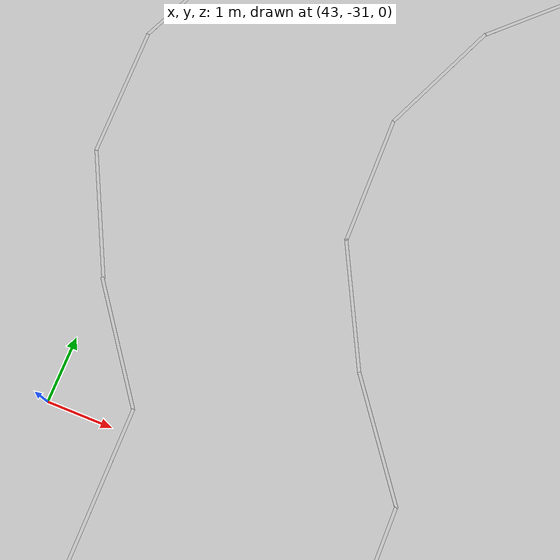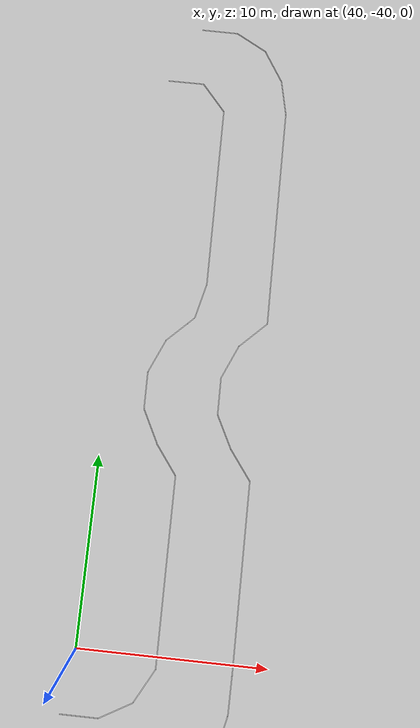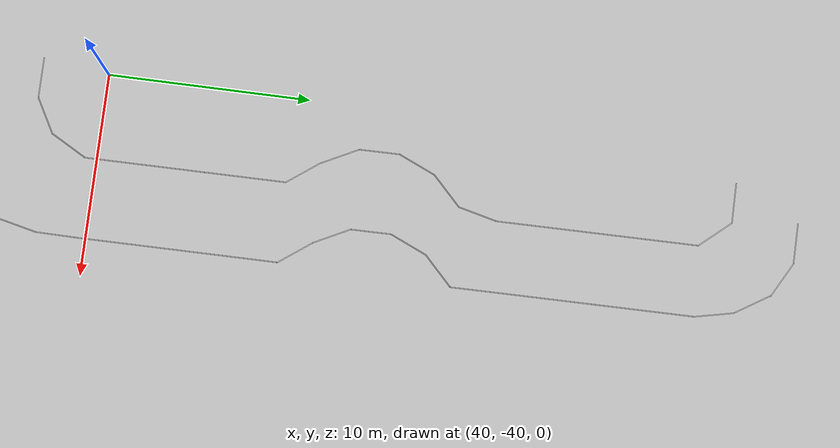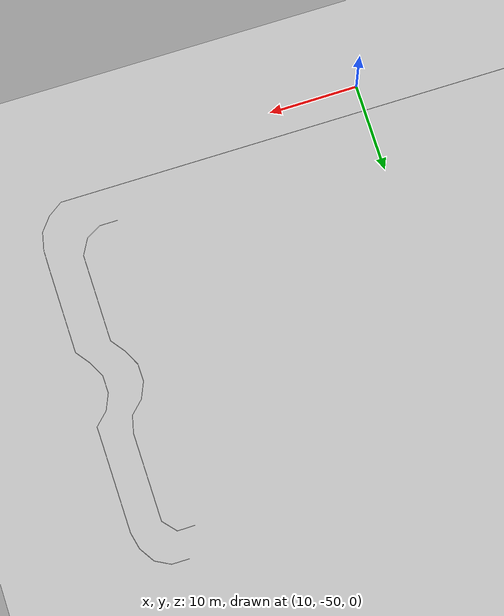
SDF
<sdf version="1.7">
 <world name="default">
  <light name="sun" type="directional">
   <pose>0 0 10 0 -0 0</pose>
   <diffuse>0.8 0.8 0.8 1</diffuse>
   <specular>0.2 0.2 0.2 1</specular>
   <attenuation>
    <range>1000</range>
    <constant>0.9</constant>
    <linear>0.01</linear>
    <quadratic>0.001</quadratic>
   </attenuation>
   <direction>-0.5 0.1 -0.9</direction>
   <spot><inner_angle>0</inner_angle><outer_angle>0</outer_angle><falloff>0</falloff></spot>
  </light>
  <model name="ground_plane">
   <static>1</static>
   <link name="link">
    <collision name="collision">
     <geometry><plane><normal>0 0 1</normal><size>100 100</size></plane></geometry>
     <surface>
      <contact><collide_bitmask>65535</collide_bitmask></contact>
      <friction><ode><mu>100</mu><mu2>50</mu2></ode></friction>
     </surface>
    </collision>
    <visual name="visual">
     <cast_shadows>0</cast_shadows>
     <geometry><plane><normal>0 0 1</normal><size>100 100</size></plane></geometry>
     <material>
      <script><uri>file://media/materials/scripts/gazebo.material</uri><name>Gazebo/Grey</name></script>
     </material>
    </visual>
   </link>
  </model>
  <gravity>0 0 -9.8</gravity>
  <magnetic_field>6e-06 2.3e-05 -4.2e-05</magnetic_field>
  <atmosphere type="adiabatic"/>
  <physics type="ode">
   <max_step_size>0.001</max_step_size>
   <real_time_factor>1</real_time_factor>
   <real_time_update_rate>1000</real_time_update_rate>
  </physics>
  <scene><ambient>0.4 0.4 0.4 1</ambient><background>0.7 0.7 0.7 1</background><shadows>1</shadows></scene>
  <spherical_coordinates>
   <surface_model>EARTH_WGS84</surface_model>
   <latitude_deg>0</latitude_deg>
   <longitude_deg>0</longitude_deg>
   <elevation>0</elevation>
   <heading_deg>0</heading_deg>
  </spherical_coordinates>
  <model name="140m Tape">
   <static>1</static>
   <link name="link">
    <inertial>
     <pose>0 0 0.0175 0 -0 0</pose>
     <mass>10</mass>
     <inertia><ixx>1</ixx><ixy>0</ixy><ixz>0</ixz><iyy>1</iyy><iyz>0</iyz><izz>1</izz></inertia>
    </inertial>
    <collision name="collision">
     <pose>0 0 0.0175 0 -0 0</pose>
     <geometry><mesh><uri>model://140mTape/140mTape.dae</uri></mesh></geometry>
    </collision>
    <visual name="visual"><geometry><mesh><uri>model://140mTape/140mTape.dae</uri></mesh></geometry></visual>
   </link>
   <pose>-21.1513 -47.1539 0 0 -0 0</pose>
  </model>
  <model name="2m Tape">
   <static>1</static>
   <link name="link">
    <inertial>
     <pose>0 0 0.0175 0 -0 0</pose>
     <mass>10</mass>
     <inertia><ixx>1</ixx><ixy>0</ixy><ixz>0</ixz><iyy>1</iyy><iyz>0</iyz><izz>1</izz></inertia>
    </inertial>
    <collision name="collision">
     <pose>0 0 0.0175 0 -0 0</pose>
     <geometry><mesh><uri>model://2mTape/2mTape.dae</uri></mesh></geometry>
    </collision>
    <visual name="visual"><geometry><mesh><uri>model://2mTape/2mTape.dae</uri></mesh></geometry></visual>
   </link>
   <pose>45.6804 -46.5754 0 0 -0 0.601741</pose>
  </model>
  <model name="2m Tape_0">
   <static>1</static>
   <link name="link">
    <inertial>
     <pose>0 0 0.0175 0 -0 0</pose>
     <mass>10</mass>
     <inertia><ixx>1</ixx><ixy>0</ixy><ixz>0</ixz><iyy>1</iyy><iyz>0</iyz><izz>1</izz></inertia>
    </inertial>
    <collision name="collision">
     <pose>0 0 0.0175 0 -0 0</pose>
     <geometry><mesh><uri>model://2mTape/2mTape.dae</uri></mesh></geometry>
    </collision>
    <visual name="visual"><geometry><mesh><uri>model://2mTape/2mTape.dae</uri></mesh></geometry></visual>
   </link>
   <pose>47.1125 -45.2484 0 0 -0 0.895158</pose>
  </model>
  <model name="2m Tape_1">
   <static>1</static>
   <link name="link">
    <inertial>
     <pose>0 0 0.0175 0 -0 0</pose>
     <mass>10</mass>
     <inertia><ixx>1</ixx><ixy>0</ixy><ixz>0</ixz><iyy>1</iyy><iyz>0</iyz><izz>1</izz></inertia>
    </inertial>
    <collision name="collision">
     <pose>0 0 0.0175 0 -0 0</pose>
     <geometry><mesh><uri>model://2mTape/2mTape.dae</uri></mesh></geometry>
    </collision>
    <visual name="visual"><geometry><mesh><uri>model://2mTape/2mTape.dae</uri></mesh></geometry></visual>
   </link>
   <pose>47.9608 -43.482 0 0 -0 1.34892</pose>
  </model>
  <model name="2m Tape_3">
   <static>1</static>
   <link name="link">
    <inertial>
     <pose>0 0 0.0175 0 -0 0</pose>
     <mass>10</mass>
     <inertia><ixx>1</ixx><ixy>0</ixy><ixz>0</ixz><iyy>1</iyy><iyz>0</iyz><izz>1</izz></inertia>
    </inertial>
    <collision name="collision">
     <pose>0 0 0.0175 0 -0 0</pose>
     <geometry><mesh><uri>model://2mTape/2mTape.dae</uri></mesh></geometry>
    </collision>
    <visual name="visual"><geometry><mesh><uri>model://2mTape/2mTape.dae</uri></mesh></geometry></visual>
   </link>
   <pose>48.1967 -41.5182 0 0 -0 1.56187</pose>
  </model>
  <model name="10m Tape_0">
   <static>1</static>
   <link name="link">
    <inertial>
     <pose>0 0 0.0175 0 -0 0</pose>
     <mass>10</mass>
     <inertia><ixx>1</ixx><ixy>0</ixy><ixz>0</ixz><iyy>1</iyy><iyz>0</iyz><izz>1</izz></inertia>
    </inertial>
    <collision name="collision">
     <pose>0 0 0.0175 0 -0 0</pose>
     <geometry><mesh><uri>model://10mTape/10mTape.dae</uri></mesh></geometry>
    </collision>
    <visual name="visual"><geometry><mesh><uri>model://10mTape/10mTape.dae</uri></mesh></geometry></visual>
   </link>
   <pose>48.1366 -35.5288 0 0 0 -1.56635</pose>
  </model>
  <model name="2m Tape_2">
   <static>1</static>
   <link name="link">
    <inertial>
     <pose>0 0 0.0175 0 -0 0</pose>
     <mass>10</mass>
     <inertia><ixx>1</ixx><ixy>0</ixy><ixz>0</ixz><iyy>1</iyy><iyz>0</iyz><izz>1</izz></inertia>
    </inertial>
    <collision name="collision">
     <pose>0 0 0.0175 0 -0 0</pose>
     <geometry><mesh><uri>model://2mTape/2mTape.dae</uri></mesh></geometry>
    </collision>
    <visual name="visual"><geometry><mesh><uri>model://2mTape/2mTape.dae</uri></mesh></geometry></visual>
   </link>
   <pose>47.5374 -29.7551 0 0 0 -0.932759</pose>
  </model>
  <model name="2m Tape_2_clone">
   <static>1</static>
   <link name="link">
    <inertial>
     <pose>0 0 0.0175 0 -0 0</pose>
     <mass>10</mass>
     <inertia><ixx>1</ixx><ixy>0</ixy><ixz>0</ixz><iyy>1</iyy><iyz>0</iyz><izz>1</izz></inertia>
    </inertial>
    <collision name="collision">
     <pose>0 0 0.0175 0 -0 0</pose>
     <geometry><mesh><uri>model://2mTape/2mTape.dae</uri></mesh></geometry>
    </collision>
    <visual name="visual"><geometry><mesh><uri>model://2mTape/2mTape.dae</uri></mesh></geometry></visual>
   </link>
   <pose>46.4948 -28.0704 0 0 0 -1.10193</pose>
  </model>
  <model name="2m Tape_4">
   <static>1</static>
   <link name="link">
    <inertial>
     <pose>0 0 0.0175 0 -0 0</pose>
     <mass>10</mass>
     <inertia><ixx>1</ixx><ixy>0</ixy><ixz>0</ixz><iyy>1</iyy><iyz>0</iyz><izz>1</izz></inertia>
    </inertial>
    <collision name="collision">
     <pose>0 0 0.0175 0 -0 0</pose>
     <geometry><mesh><uri>model://2mTape/2mTape.dae</uri></mesh></geometry>
    </collision>
    <visual name="visual"><geometry><mesh><uri>model://2mTape/2mTape.dae</uri></mesh></geometry></visual>
   </link>
   <pose>46.0419 -26.1884 0 0 0 -1.56173</pose>
  </model>
  <model name="2m Tape_5">
   <static>1</static>
   <link name="link">
    <inertial>
     <pose>0 0 0.0175 0 -0 0</pose>
     <mass>10</mass>
     <inertia><ixx>1</ixx><ixy>0</ixy><ixz>0</ixz><iyy>1</iyy><iyz>0</iyz><izz>1</izz></inertia>
    </inertial>
    <collision name="collision">
     <pose>0 0 0.0175 0 -0 0</pose>
     <geometry><mesh><uri>model://2mTape/2mTape.dae</uri></mesh></geometry>
    </collision>
    <visual name="visual"><geometry><mesh><uri>model://2mTape/2mTape.dae</uri></mesh></geometry></visual>
   </link>
   <pose>46.4353 -24.2739 0 0 0 -1.98171</pose>
  </model>
  <model name="2m Tape_5_clone">
   <static>1</static>
   <link name="link">
    <inertial>
     <pose>0 0 0.0175 0 -0 0</pose>
     <mass>10</mass>
     <inertia><ixx>1</ixx><ixy>0</ixy><ixz>0</ixz><iyy>1</iyy><iyz>0</iyz><izz>1</izz></inertia>
    </inertial>
    <collision name="collision">
     <pose>0 0 0.0175 0 -0 0</pose>
     <geometry><mesh><uri>model://2mTape/2mTape.dae</uri></mesh></geometry>
    </collision>
    <visual name="visual"><geometry><mesh><uri>model://2mTape/2mTape.dae</uri></mesh></geometry></visual>
   </link>
   <pose>47.5583 -22.6619 0 0 0 -2.36892</pose>
  </model>
  <model name="2m Tape_4_clone">
   <static>1</static>
   <link name="link">
    <inertial>
     <pose>0 0 0.0175 0 -0 0</pose>
     <mass>10</mass>
     <inertia><ixx>1</ixx><ixy>0</ixy><ixz>0</ixz><iyy>1</iyy><iyz>0</iyz><izz>1</izz></inertia>
    </inertial>
    <collision name="collision">
     <pose>0 0 0.0175 0 -0 0</pose>
     <geometry><mesh><uri>model://2mTape/2mTape.dae</uri></mesh></geometry>
    </collision>
    <visual name="visual"><geometry><mesh><uri>model://2mTape/2mTape.dae</uri></mesh></geometry></visual>
   </link>
   <pose>48.2399 -21.016 0 0 0 -1.56173</pose>
  </model>
  <model name="10m Tape_1">
   <static>1</static>
   <link name="link">
    <inertial>
     <pose>0 0 0.0175 0 -0 0</pose>
     <mass>10</mass>
     <inertia><ixx>1</ixx><ixy>0</ixy><ixz>0</ixz><iyy>1</iyy><iyz>0</iyz><izz>1</izz></inertia>
    </inertial>
    <collision name="collision">
     <pose>0 0 0.0175 0 -0 0</pose>
     <geometry><mesh><uri>model://10mTape/10mTape.dae</uri></mesh></geometry>
    </collision>
    <visual name="visual"><geometry><mesh><uri>model://10mTape/10mTape.dae</uri></mesh></geometry></visual>
   </link>
   <pose>48.2475 -15.0212 0 0 -0 1.57732</pose>
  </model>
  <model name="2m Tape_6">
   <static>1</static>
   <link name="link">
    <inertial>
     <pose>0 0 0.0175 0 -0 0</pose>
     <mass>10</mass>
     <inertia><ixx>1</ixx><ixy>0</ixy><ixz>0</ixz><iyy>1</iyy><iyz>0</iyz><izz>1</izz></inertia>
    </inertial>
    <collision name="collision">
     <pose>0 0 0.0175 0 -0 0</pose>
     <geometry><mesh><uri>model://2mTape/2mTape.dae</uri></mesh></geometry>
    </collision>
    <visual name="visual"><geometry><mesh><uri>model://2mTape/2mTape.dae</uri></mesh></geometry></visual>
   </link>
   <pose>47.2585 -7.2523 0 0 -0 2.13636</pose>
  </model>
  <model name="2m Tape_7">
   <static>1</static>
   <link name="link">
    <inertial>
     <pose>0 0 0.0175 0 -0 0</pose>
     <mass>10</mass>
     <inertia><ixx>1</ixx><ixy>0</ixy><ixz>0</ixz><iyy>1</iyy><iyz>0</iyz><izz>1</izz></inertia>
    </inertial>
    <collision name="collision">
     <pose>0 0 0.0175 0 -0 0</pose>
     <geometry><mesh><uri>model://2mTape/2mTape.dae</uri></mesh></geometry>
    </collision>
    <visual name="visual"><geometry><mesh><uri>model://2mTape/2mTape.dae</uri></mesh></geometry></visual>
   </link>
   <pose>47.9583 -9.0731 0 0 0 -1.35367</pose>
  </model>
  <model name="2m Tape_8">
   <static>1</static>
   <link name="link">
    <inertial>
     <pose>0 0 0.0175 0 -0 0</pose>
     <mass>10</mass>
     <inertia><ixx>1</ixx><ixy>0</ixy><ixz>0</ixz><iyy>1</iyy><iyz>0</iyz><izz>1</izz></inertia>
    </inertial>
    <collision name="collision">
     <pose>0 0 0.0175 0 -0 0</pose>
     <geometry><mesh><uri>model://2mTape/2mTape.dae</uri></mesh></geometry>
    </collision>
    <visual name="visual"><geometry><mesh><uri>model://2mTape/2mTape.dae</uri></mesh></geometry></visual>
   </link>
   <pose>45.8449 -5.97097 0 0 0 -0.494974</pose>
  </model>
  <model name="2m Tape_9">
   <static>1</static>
   <link name="link">
    <inertial>
     <pose>0 0 0.0175 0 -0 0</pose>
     <mass>10</mass>
     <inertia><ixx>1</ixx><ixy>0</ixy><ixz>0</ixz><iyy>1</iyy><iyz>0</iyz><izz>1</izz></inertia>
    </inertial>
    <collision name="collision">
     <pose>0 0 0.0175 0 -0 0</pose>
     <geometry><mesh><uri>model://2mTape/2mTape.dae</uri></mesh></geometry>
    </collision>
    <visual name="visual"><geometry><mesh><uri>model://2mTape/2mTape.dae</uri></mesh></geometry></visual>
   </link>
   <pose>44.0094 -5.51704 0 0 -0 0</pose>
  </model>
  <model name="2m Tape_3_clone">
   <static>1</static>
   <link name="link">
    <inertial>
     <pose>0 0 0.0175 0 -0 0</pose>
     <mass>10</mass>
     <inertia><ixx>1</ixx><ixy>0</ixy><ixz>0</ixz><iyy>1</iyy><iyz>0</iyz><izz>1</izz></inertia>
    </inertial>
    <collision name="collision">
     <pose>0 0 0.0175 0 -0 0</pose>
     <geometry><mesh><uri>model://2mTape/2mTape.dae</uri></mesh></geometry>
    </collision>
    <visual name="visual"><geometry><mesh><uri>model://2mTape/2mTape.dae</uri></mesh></geometry></visual>
   </link>
   <pose>43.75 -41.4958 0 0 -0 1.06326</pose>
  </model>
  <model name="10m Tape_0_clone">
   <static>1</static>
   <link name="link">
    <inertial>
     <pose>0 0 0.0175 0 -0 0</pose>
     <mass>10</mass>
     <inertia><ixx>1</ixx><ixy>0</ixy><ixz>0</ixz><iyy>1</iyy><iyz>0</iyz><izz>1</izz></inertia>
    </inertial>
    <collision name="collision">
     <pose>0 0 0.0175 0 -0 0</pose>
     <geometry><mesh><uri>model://10mTape/10mTape.dae</uri></mesh></geometry>
    </collision>
    <visual name="visual"><geometry><mesh><uri>model://10mTape/10mTape.dae</uri></mesh></geometry></visual>
   </link>
   <pose>44.1682 -35.6366 0 0 0 -1.56635</pose>
  </model>
  <model name="2m Tape_2_clone_0">
   <static>1</static>
   <link name="link">
    <inertial>
     <pose>0 0 0.0175 0 -0 0</pose>
     <mass>10</mass>
     <inertia><ixx>1</ixx><ixy>0</ixy><ixz>0</ixz><iyy>1</iyy><iyz>0</iyz><izz>1</izz></inertia>
    </inertial>
    <collision name="collision">
     <pose>0 0 0.0175 0 -0 0</pose>
     <geometry><mesh><uri>model://2mTape/2mTape.dae</uri></mesh></geometry>
    </collision>
    <visual name="visual"><geometry><mesh><uri>model://2mTape/2mTape.dae</uri></mesh></geometry></visual>
   </link>
   <pose>43.5511 -29.853 0 0 0 -0.932759</pose>
  </model>
  <model name="2m Tape_2_clone_clone">
   <static>1</static>
   <link name="link">
    <inertial>
     <pose>0 0 0.0175 0 -0 0</pose>
     <mass>10</mass>
     <inertia><ixx>1</ixx><ixy>0</ixy><ixz>0</ixz><iyy>1</iyy><iyz>0</iyz><izz>1</izz></inertia>
    </inertial>
    <collision name="collision">
     <pose>0 0 0.0175 0 -0 0</pose>
     <geometry><mesh><uri>model://2mTape/2mTape.dae</uri></mesh></geometry>
    </collision>
    <visual name="visual"><geometry><mesh><uri>model://2mTape/2mTape.dae</uri></mesh></geometry></visual>
   </link>
   <pose>42.5314 -28.1777 0 0 0 -1.10193</pose>
  </model>
  <model name="2m Tape_4_clone_0">
   <static>1</static>
   <link name="link">
    <inertial>
     <pose>0 0 0.0175 0 -0 0</pose>
     <mass>10</mass>
     <inertia><ixx>1</ixx><ixy>0</ixy><ixz>0</ixz><iyy>1</iyy><iyz>0</iyz><izz>1</izz></inertia>
    </inertial>
    <collision name="collision">
     <pose>0 0 0.0175 0 -0 0</pose>
     <geometry><mesh><uri>model://2mTape/2mTape.dae</uri></mesh></geometry>
    </collision>
    <visual name="visual"><geometry><mesh><uri>model://2mTape/2mTape.dae</uri></mesh></geometry></visual>
   </link>
   <pose>42.0708 -26.2912 0 0 0 -1.56173</pose>
  </model>
  <model name="2m Tape_5_clone_0">
   <static>1</static>
   <link name="link">
    <inertial>
     <pose>0 0 0.0175 0 -0 0</pose>
     <mass>10</mass>
     <inertia><ixx>1</ixx><ixy>0</ixy><ixz>0</ixz><iyy>1</iyy><iyz>0</iyz><izz>1</izz></inertia>
    </inertial>
    <collision name="collision">
     <pose>0 0 0.0175 0 -0 0</pose>
     <geometry><mesh><uri>model://2mTape/2mTape.dae</uri></mesh></geometry>
    </collision>
    <visual name="visual"><geometry><mesh><uri>model://2mTape/2mTape.dae</uri></mesh></geometry></visual>
   </link>
   <pose>42.4557 -24.3839 0 0 0 -1.98171</pose>
  </model>
  <model name="2m Tape_5_clone_clone">
   <static>1</static>
   <link name="link">
    <inertial>
     <pose>0 0 0.0175 0 -0 0</pose>
     <mass>10</mass>
     <inertia><ixx>1</ixx><ixy>0</ixy><ixz>0</ixz><iyy>1</iyy><iyz>0</iyz><izz>1</izz></inertia>
    </inertial>
    <collision name="collision">
     <pose>0 0 0.0175 0 -0 0</pose>
     <geometry><mesh><uri>model://2mTape/2mTape.dae</uri></mesh></geometry>
    </collision>
    <visual name="visual"><geometry><mesh><uri>model://2mTape/2mTape.dae</uri></mesh></geometry></visual>
   </link>
   <pose>43.5617 -22.768 0 0 0 -2.36892</pose>
  </model>
  <model name="2m Tape_4_clone_clone">
   <static>1</static>
   <link name="link">
    <inertial>
     <pose>0 0 0.0175 0 -0 0</pose>
     <mass>10</mass>
     <inertia><ixx>1</ixx><ixy>0</ixy><ixz>0</ixz><iyy>1</iyy><iyz>0</iyz><izz>1</izz></inertia>
    </inertial>
    <collision name="collision">
     <pose>0 0 0.0175 0 -0 0</pose>
     <geometry><mesh><uri>model://2mTape/2mTape.dae</uri></mesh></geometry>
    </collision>
    <visual name="visual"><geometry><mesh><uri>model://2mTape/2mTape.dae</uri></mesh></geometry></visual>
   </link>
   <pose>44.5117 -21.1143 0 0 0 -1.80701</pose>
  </model>
  <model name="10m Tape_1_clone">
   <static>1</static>
   <link name="link">
    <inertial>
     <pose>0 0 0.0175 0 -0 0</pose>
     <mass>10</mass>
     <inertia><ixx>1</ixx><ixy>0</ixy><ixz>0</ixz><iyy>1</iyy><iyz>0</iyz><izz>1</izz></inertia>
    </inertial>
    <collision name="collision">
     <pose>0 0 0.0175 0 -0 0</pose>
     <geometry><mesh><uri>model://10mTape/10mTape.dae</uri></mesh></geometry>
    </collision>
    <visual name="visual"><geometry><mesh><uri>model://10mTape/10mTape.dae</uri></mesh></geometry></visual>
   </link>
   <pose>44.7584 -15.2024 0 0 -0 1.57732</pose>
  </model>
  <model name="2m Tape_7_clone">
   <static>1</static>
   <link name="link">
    <inertial>
     <pose>0 0 0.0175 0 -0 0</pose>
     <mass>10</mass>
     <inertia><ixx>1</ixx><ixy>0</ixy><ixz>0</ixz><iyy>1</iyy><iyz>0</iyz><izz>1</izz></inertia>
    </inertial>
    <collision name="collision">
     <pose>0 0 0.0175 0 -0 0</pose>
     <geometry><mesh><uri>model://2mTape/2mTape.dae</uri></mesh></geometry>
    </collision>
    <visual name="visual"><geometry><mesh><uri>model://2mTape/2mTape.dae</uri></mesh></geometry></visual>
   </link>
   <pose>44.0321 -9.47602 0 0 0 -0.856035</pose>
  </model>
  <model name="2m Tape_7_clone_clone_clone">
   <static>1</static>
   <link name="link">
    <inertial>
     <pose>0 0 0.0175 0 -0 0</pose>
     <mass>10</mass>
     <inertia><ixx>1</ixx><ixy>0</ixy><ixz>0</ixz><iyy>1</iyy><iyz>0</iyz><izz>1</izz></inertia>
    </inertial>
    <collision name="collision">
     <pose>0 0 0.0175 0 -0 0</pose>
     <geometry><mesh><uri>model://2mTape/2mTape.dae</uri></mesh></geometry>
    </collision>
    <visual name="visual"><geometry><mesh><uri>model://2mTape/2mTape.dae</uri></mesh></geometry></visual>
   </link>
   <pose>42.4047 -8.73878 0 0 -0 0.006809</pose>
  </model>
  <model name="2m Tape_3_clone_clone">
   <static>1</static>
   <link name="link">
    <inertial>
     <pose>0 0 0.0175 0 -0 0</pose>
     <mass>10</mass>
     <inertia><ixx>1</ixx><ixy>0</ixy><ixz>0</ixz><iyy>1</iyy><iyz>0</iyz><izz>1</izz></inertia>
    </inertial>
    <collision name="collision">
     <pose>0 0 0.0175 0 -0 0</pose>
     <geometry><mesh><uri>model://2mTape/2mTape.dae</uri></mesh></geometry>
    </collision>
    <visual name="visual"><geometry><mesh><uri>model://2mTape/2mTape.dae</uri></mesh></geometry></visual>
   </link>
   <pose>42.4131 -42.8564 0 0 -0 0.506337</pose>
  </model>
  <model name="2m Tape_10">
   <static>1</static>
   <link name="link">
    <inertial>
     <pose>0 0 0.0175 0 -0 0</pose>
     <mass>10</mass>
     <inertia><ixx>1</ixx><ixy>0</ixy><ixz>0</ixz><iyy>1</iyy><iyz>0</iyz><izz>1</izz></inertia>
    </inertial>
    <collision name="collision">
     <pose>0 0 0.0175 0 -0 0</pose>
     <geometry><mesh><uri>model://2mTape/2mTape.dae</uri></mesh></geometry>
    </collision>
    <visual name="visual"><geometry><mesh><uri>model://2mTape/2mTape.dae</uri></mesh></geometry></visual>
   </link>
   <pose>40.5363 -43.3329 0 0 -0 0</pose>
  </model>
  <model name="2m Tape_11">
   <static>1</static>
   <link name="link">
    <inertial>
     <pose>0 0 0.0175 0 -0 0</pose>
     <mass>10</mass>
     <inertia><ixx>1</ixx><ixy>0</ixy><ixz>0</ixz><iyy>1</iyy><iyz>0</iyz><izz>1</izz></inertia>
    </inertial>
    <collision name="collision">
     <pose>0 0 0.0175 0 -0 0</pose>
     <geometry><mesh><uri>model://2mTape/2mTape.dae</uri></mesh></geometry>
    </collision>
    <visual name="visual"><geometry><mesh><uri>model://2mTape/2mTape.dae</uri></mesh></geometry></visual>
   </link>
   <pose>-95.9813 -46.5979 0 0 0 -0.580554</pose>
  </model>
 </world>
</sdf>
